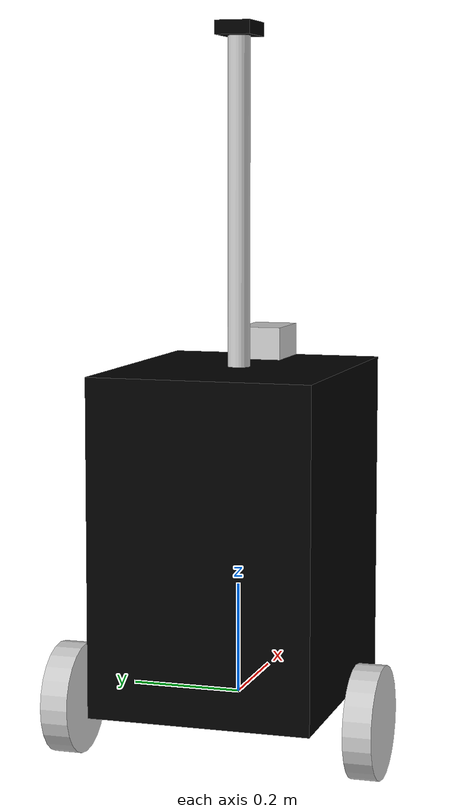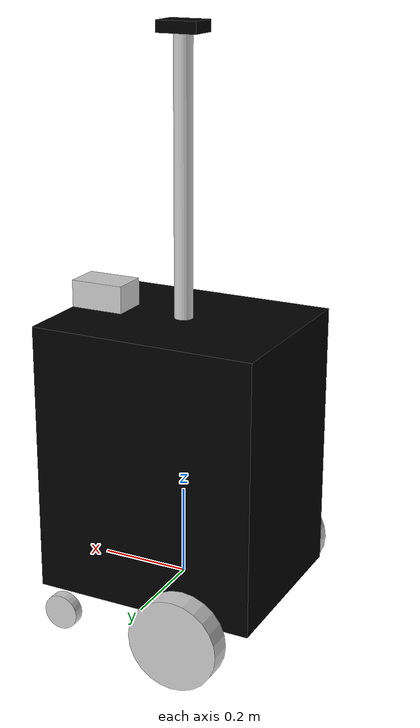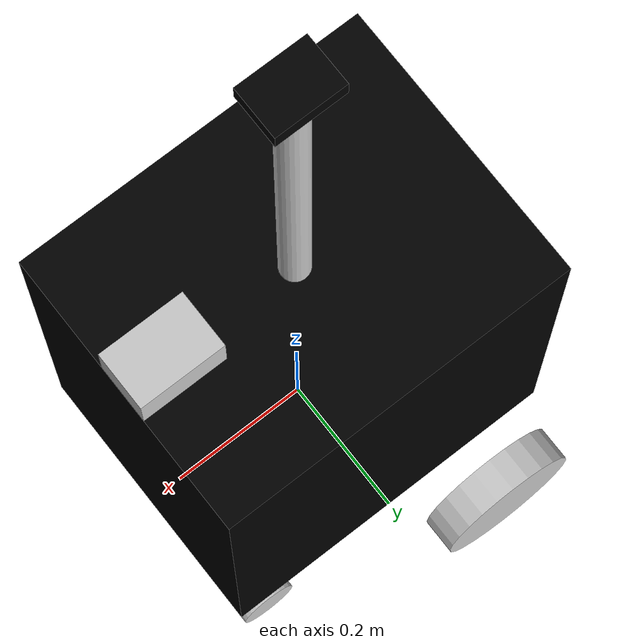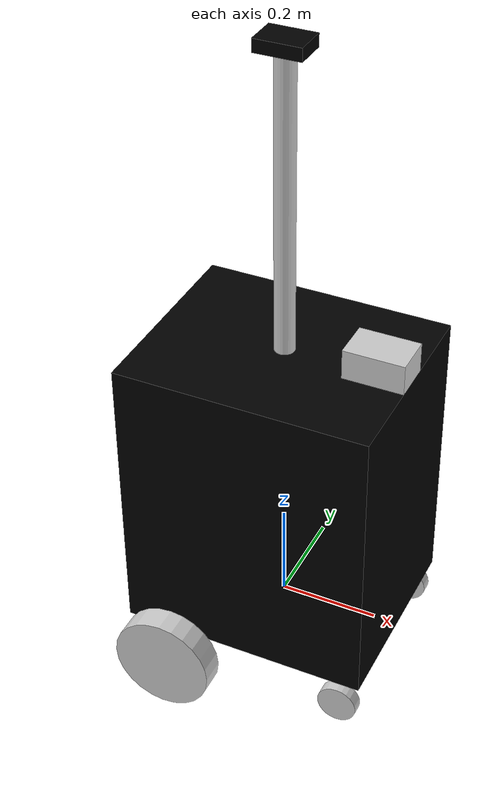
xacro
<?xml version="1.0"?>
<robot name="mark1" xmlns:xacro="http://www.ros.org/wiki/xacro">

    <xacro:include filename="common_properties.xacro" />
    <xacro:include filename="mobile_base.xacro" />
    <xacro:include filename="orbbec_camera.xacro" />
    <xacro:include filename="lidar.xacro" />
    <xacro:include filename="mobile_base_gazebo.xacro" />

</robot>

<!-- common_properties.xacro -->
<robot xmlns:xacro="http://www.ros.org/wiki/xacro">
<!--as we are going to add this xacro to main urdf, no need to add name attribute-->

    <material name="black">
        <color rgba="0 0 0 1"/>
    </material>
    <material name="blue">
        <color rgba="0.8 0.8 0.8 1"/>
    </material>

    <xacro:macro name="box_inertia" params="m x y z o_xyz o_rpy" >
        <inertial>
            <mass value="${m}" />
            <origin xyz="${o_xyz}" rpy="${o_rpy}"/>
            <inertia ixx="${(m/12) * (y*y + z*z)}" ixy="0" ixz="0"
                     iyy="${(m/12) * (x*x + z*z)}" iyz="0"
                     izz="${(m/12) * (y*y + x*x)}" />
        </inertial>
    </xacro:macro>

    <xacro:macro name="cylinder_inertia" params="m r l o_xyz o_rpy">
        <inertial>
            <mass value="${m}" />
            <origin xyz="${o_xyz}" rpy="${o_rpy}" />
            <inertia ixx="${(m/12) * (3*r*r + l*l)}" ixy="0" ixz="0"
                     iyy="${(m/12) * (3*r*r + l*l)}" iyz="0"
                     izz="${(m/2) * (r*r)}" />
        </inertial>
    </xacro:macro>

    <xacro:macro name="wheel_inertia" params="m r h o_xyz o_rpy" >
        <inertial>
            <mass value="${m}" />
            <origin xyz="${o_xyz}" rpy="${o_rpy}"/>
            <inertia ixx="${(m/12) * (3*r*r + h*h)}" ixy="0" ixz="0"
                     iyy="${(m/12) * (3*r*r + h*h)}" iyz="0"
                     izz="${(1/2) * (m * (r*r))}" />
        </inertial>
    </xacro:macro>

</robot>

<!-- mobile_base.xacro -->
<robot xmlns:xacro="http://www.ros.org/wiki/xacro">

    <xacro:property name="base_length" value="0.5"/>
    <xacro:property name="base_width" value="0.4" />
    <xacro:property name="base_height" value="0.6" />
    <xacro:property name="wheel_radius" value="0.1" />
    <xacro:property name="wheel_length" value="0.05" />
    <xacro:property name="caster_wheel_radius" value="0.04" />
    <xacro:property name="caster_wheel_length" value="0.025" />
    <xacro:property name="pole_length" value="0.6" />
    <xacro:property name="pole_radius" value="0.02" />
    <xacro:property name="gap_for_wheels" value="0.05" />
    <xacro:property name="gap_for_caster_wheels" value="${wheel_radius - (2*caster_wheel_radius)}" />

    <link name="base_link">
        <visual>
            <geometry>
                <box size="${base_length} ${base_width} ${base_height}"/>
            </geometry>
            <origin xyz="0 0 ${base_height/2}" rpy="0 0 0"/>
            <material name="black"/>
        </visual>
        <collision>
            <geometry>
                <box size="${base_length} ${base_width} ${base_height}"/>
            </geometry>
            <origin xyz="0 0 ${base_height/2}" rpy="0 0 0"/>
        </collision>
        <xacro:box_inertia m="20" x="${base_length}" y="${base_width}" z="${base_height}"
                           o_xyz="0 0 ${base_height/2}" o_rpy="0 0 0" />
    </link>

    <link name="pole_link">
        <visual>
            <geometry>
                <cylinder radius="${pole_radius}" length="${pole_length}" />
            </geometry>
            <origin xyz="0 0 0" rpy="0 0 0" />
            <material name="blue" />
        </visual>
        <collision>
            <geometry>
                <cylinder radius="${pole_radius}" length="${pole_length}" />
            </geometry>
            <origin xyz="0 0 0" rpy="0 0 0" />
        </collision>
        <xacro:cylinder_inertia m="0.1" r="${pole_radius}" l="${pole_length}"
                                o_xyz="0 0 0" o_rpy="0 0 0" />
    </link>

    <xacro:macro name="wheel_link" params="prefix">
        <link name="${prefix}_wheel_link">
            <visual>
                <geometry>
                    <cylinder radius="${wheel_radius}" length="${wheel_length}"/>
                </geometry>
                <origin xyz="0 0 0" rpy="${pi/2.0} 0 0"/>
                <material name="blue"/>
            </visual>
            <collision>
                <geometry>
                    <sphere radius="${wheel_radius}" />
                </geometry>
                <origin xyz = "0 0 0" rpy="${pi/2.0} 0 0" />
            </collision>
            <xacro:wheel_inertia m="0.2" r="${wheel_radius}" h="${wheel_length}"
                           o_xyz="0 0 0" o_rpy="${pi/2.0} 0 0" />
        </link>
    </xacro:macro>

    <xacro:wheel_link prefix="rear_right" />
    <xacro:wheel_link prefix="rear_left" />

    <xacro:macro name="caster_wheel_link" params="prefix">

        <link name="${prefix}_wheel_link">
            <visual>
                <geometry>
                    <cylinder radius="${caster_wheel_radius}" length="${caster_wheel_length}"/>
                </geometry>
                <origin xyz="0 0 0" rpy="${pi/2.0} 0 0"/>
                <material name="blue"/>
            </visual>

            <collision>
                <geometry>
                    <cylinder radius="${caster_wheel_radius}" length="${caster_wheel_length}"/>
                </geometry>
                <origin xyz="0 0 0" rpy="${pi/2.0} 0 0"/>
            </collision>

            <xacro:wheel_inertia m="0.05" r="${caster_wheel_radius}" h="${caster_wheel_length}"
                           o_xyz="0 0 0" o_rpy="${pi/2.0} 0 0" />
        </link>
    </xacro:macro>

    <xacro:caster_wheel_link prefix="front_right" />
    <xacro:caster_wheel_link prefix="front_left" />

    <joint name="pole_base_joint" type="fixed">
        <parent link="base_link"/>
        <child link="pole_link"/>
        <origin xyz="0 0 ${base_height + base_height/2}" rpy="0 0 0"/>
    </joint>

    <!--front caster joints-->

    <joint name="front_left_caster_joint" type="fixed">
        <parent link="base_link"/>
        <child link="front_left_wheel_link"/>
        <origin xyz="${(base_length/4) + (2*caster_wheel_radius)} ${(base_width/2)-(caster_wheel_length/2)} ${-(caster_wheel_radius+gap_for_caster_wheels)}" rpy="0 0 0"/>
    </joint>

    <joint name="front_right_caster_joint" type="fixed">
        <parent link="base_link"/>
        <child link="front_right_wheel_link"/>
        <origin xyz="${(base_length/4) + (2*caster_wheel_radius)} ${-((base_width/2)-(caster_wheel_length/2))} ${-(caster_wheel_radius+gap_for_caster_wheels)}" rpy="0 0 0"/>
    </joint>

    <joint name="base_rear_left_wheel_joint" type="fixed">
        <parent link="base_link"/>
        <child link="rear_left_wheel_link"/>
        <origin xyz="${-base_length/4} ${(base_width/2)+(wheel_length/2) + gap_for_wheels} 0" rpy="0 0 0"/>
        <axis xyz="0 1 0"/>
    </joint>

    <joint name="base_rear_right_wheel_joint" type="fixed">
        <parent link="base_link"/>
        <child link="rear_right_wheel_link"/>
        <origin xyz="${-base_length/4} ${-((base_width/2)+(wheel_length/2)+gap_for_wheels)} 0" rpy="0 0 0"/>
        <axis xyz="0 1 0"/>
    </joint>
</robot>

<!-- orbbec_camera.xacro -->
<robot xmlns:xacro="http://www.ros.org/wiki/xacro">

    <!-- Orbbec Camera Properties -->
    <xacro:property name="orbbec_camera_length" value="0.090"/>
    <xacro:property name="orbbec_camera_width" value="0.065"/>
    <xacro:property name="orbbec_camera_height" value="0.025"/>
    <xacro:property name="orbbec_camera_weight" value="0.3"/>

    <!-- Camera Link -->
    <link name="camera_link">
        <visual>
            <geometry>
                <box size="${orbbec_camera_length} ${orbbec_camera_width} ${orbbec_camera_height}" />
            </geometry>
            <origin xyz="0 0 0" rpy="0 0 0" />
            <material name="black" />
        </visual>
        <collision>
            <geometry>
                <box size="${orbbec_camera_length} ${orbbec_camera_width} ${orbbec_camera_height}" />
            </geometry>
            <origin xyz="0 0 0" rpy="0 0 0"/>
        </collision>
        <xacro:box_inertia m="${orbbec_camera_weight}" x="${orbbec_camera_length}" y="${orbbec_camera_width}" z="${orbbec_camera_height}"
                           o_xyz="0 0 0" o_rpy="0 0 0" />
    </link>

    <!-- Camera Depth Optical Frame -->

    <!-- Camera RGB Optical Frame --> <!-- same is used for camera/depth/image_raw -->
    <link name="camera_color_optical_frame"/> <!-- same as hardware-->

    <joint name="camera_color_optical_joint" type="fixed">
        <parent link="camera_link"/>
        <child link="camera_color_optical_frame"/>
        <!-- This orientation corrects for the optical frame convention -->
        <origin xyz="0 0 0" rpy="${-pi/2} 0 ${-pi/2}"/>
    </joint>

    <!-- Camera IMU Optical Frame -->

    <!-- using real frames that hardware publishes-->
    <link name="camera_accel_gyro_optical_frame" />

    <joint name="camera_imu_optical_joint" type="fixed">
        <parent link="camera_link"/> <!-- removed extra link and added this directly to camera-->
        <child link="camera_accel_gyro_optical_frame" />
        <origin xyz="0 0 0" rpy="${-pi/2} 0 ${-pi/2}"/>
    </joint>

    <!-- this one is for camera IR-->
    <link name="camera_ir_optical_frame" />

    <joint name="camera_ir_optical_joint" type="fixed">
        <parent link="camera_link"/>
        <child link="camera_ir_optical_frame" />
        <origin xyz="0 0 0" rpy="${-pi/2} 0 ${-pi/2}"/>
    </joint>

    <!-- Mount camera on pole -->
    <joint name="pole_camera_joint" type="fixed">
        <parent link="pole_link"/>
        <child link="camera_link"/>
        <origin xyz="0 0 ${pole_length/2}" rpy="0 0 0"/>
    </joint>

</robot>

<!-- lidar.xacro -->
<robot xmlns:xacro="http://www.ros.org/wiki/xacro">

    <!-- dToF LiDAR Pulsar SL450 Properties -->
    <xacro:property name="lidar_length" value="0.12"/>
    <xacro:property name="lidar_width" value="0.08"/>
    <xacro:property name="lidar_height" value="0.06"/>
    <xacro:property name="lidar_weight" value="0.45"/>

    <!-- LiDAR Link -->
    <link name="scan">
        <visual>
            <geometry>
                <box size="${lidar_length} ${lidar_width} ${lidar_height}" />
            </geometry>
            <origin xyz="0 0 0" rpy="0 0 0" />
            <material name="blue" />
        </visual>
        <collision>
            <geometry>
                <box size="${lidar_length} ${lidar_width} ${lidar_height}" />
            </geometry>
            <origin xyz="0 0 0" rpy="0 0 0"/>
        </collision>
        <xacro:box_inertia m="${lidar_weight}" x="${lidar_length}" y="${lidar_width}" z="${lidar_height}"
                           o_xyz="0 0 0" o_rpy="0 0 0" />
    </link>

    <!-- Joint connecting LiDAR to base_scan frame -->
    <joint name="base_scan_joint" type="fixed">
        <parent link="base_link"/>
        <child link="scan"/>
        <origin xyz="${(base_length/2)-(lidar_length/2)} 0 ${base_height+(lidar_height/2)}" rpy="0 0 0"/>
    </joint>

    <!-- Gazebo LiDAR Sensor Configuration -->
    <gazebo reference="scan">
        <sensor type="gpu_lidar" name="scan">
            <update_rate>10</update_rate>
            <lidar>
                <!-- Single-line LiDAR specifications -->
                <scan>
                    <horizontal>
                        <samples>360</samples>
                        <resolution>1.0</resolution>
                        <min_angle>-3.14159</min_angle>
                        <max_angle>3.14159</max_angle>
                    </horizontal>
                    <vertical>
                        <samples>1</samples>
                        <resolution>1.0</resolution>
                        <min_angle>0</min_angle>
                        <max_angle>0</max_angle>
                    </vertical>
                </scan>
                <!-- dToF specifications for Pulsar SL450 -->
                <range>
                    <min>0.15</min>  <!-- 15cm minimum range -->
                    <max>30.0</max>  <!-- 30m maximum range typical for SL450 -->
                    <resolution>0.01</resolution>
                </range>
                <!-- Noise characteristics -->
                <noise>
                    <type>gaussian</type>
                    <mean>0.0</mean>
                    <stddev>0.02</stddev>  <!-- 2cm standard deviation -->
                </noise>
            </lidar>
            <alwaysOn>1</alwaysOn>
            <visualize>true</visualize>

            <!-- LiDAR Plugin -->
        </sensor>
    </gazebo>

</robot>
